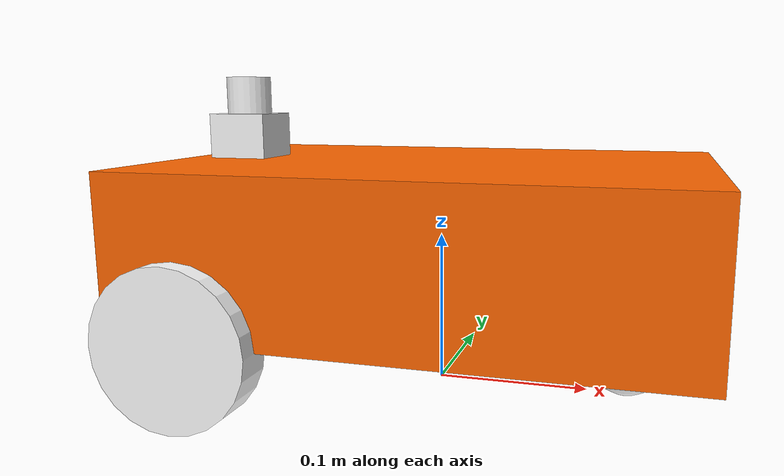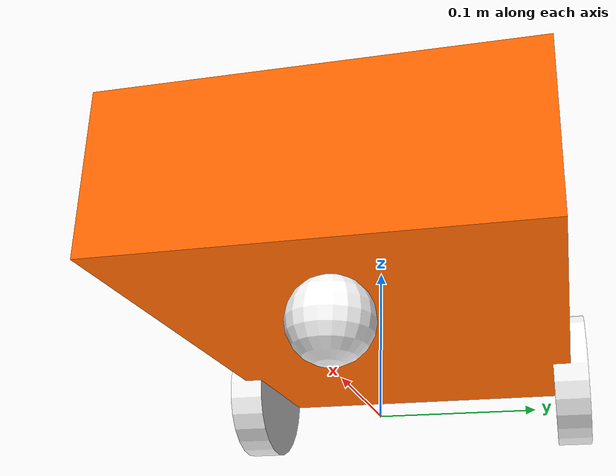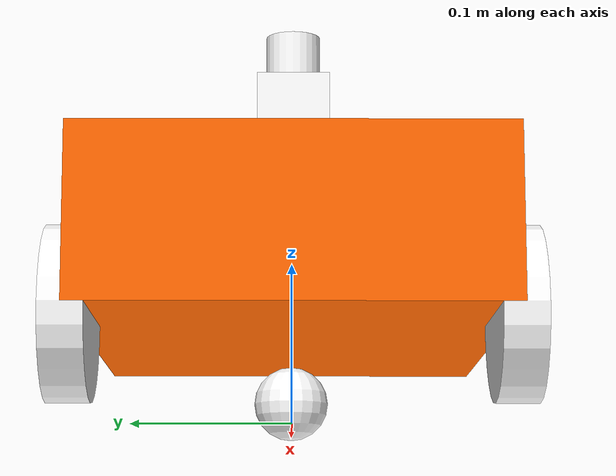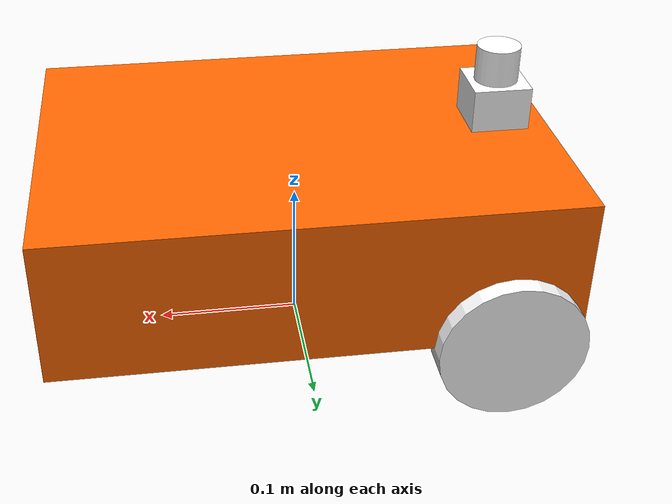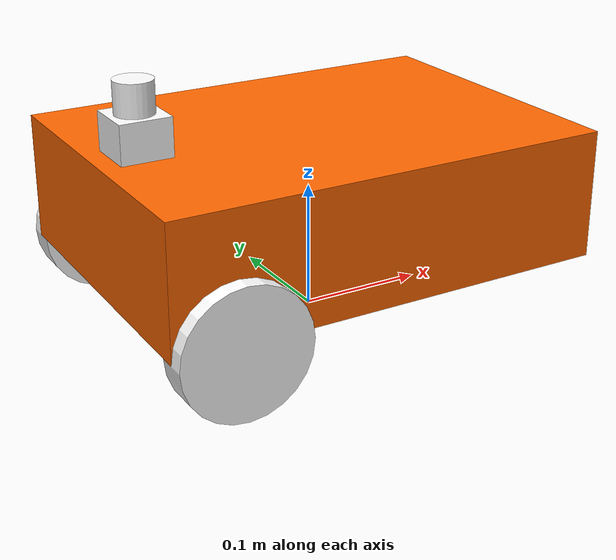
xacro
<?xml version="1.0"?>
<robot name="mbot" xmlns:xacro="http://www.ros.org/wiki/xacro">

    <xacro:include filename="$(find mbot_description)/urdf/mbot_base_gazebo.xacro" />
    <xacro:include filename="$(find mbot_description)/urdf/sensors/lidar_gazebo.xacro" />

    <mbot_base_gazebo/>

    <xacro:property name="lidar_offset_x" value="-0.14" />
    <xacro:property name="lidar_offset_y" value="0" />
    <xacro:property name="lidar_offset_z" value="0.09" />

    <!-- lidar -->
    <joint name="lidar_joint" type="fixed">
        <origin xyz="${lidar_offset_x} ${lidar_offset_y} ${lidar_offset_z}" rpy="0 0 0" />
        <parent link="base_link"/>
        <child link="laser_link"/>
    </joint>

    <rplidar />

</robot>

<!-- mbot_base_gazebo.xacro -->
<robot name="mbot" xmlns:xacro="http://www.ros.org/wiki/xacro">

 	<!-- PROPERTY LIST -->
	<xacro:property name="M_PI" value="3.1415926"/>
	<xacro:property name="base_mass"   value="0.002" />
	<xacro:property name="base_length" value="0.35"/>
    <xacro:property name="base_width" value="0.25"/>
    <xacro:property name="base_hight" value="0.1"/>

	<xacro:property name="box_mass"   value="0.005" />
	<xacro:property name="box_length" value="0.04"/>
    <xacro:property name="box_width" value="0.04"/>
    <xacro:property name="box_hight" value="0.03"/>

    <xacro:property name="caster_mass"    value="0.1" />
    <xacro:property name="caster_radius"  value="0.025"/> <!-- wheel_radius - ( base_length/2 - wheel_joint_z) -->
    <xacro:property name="caster_joint_x" value="0.18"/>

    <xacro:property name="wheel_mass"   value="0.1" />
    <xacro:property name="wheel_radius" value="0.05"/>
    <xacro:property name="wheel_length" value="0.025"/>

	<!-- Defining the colors used in this robot -->
    	<material name="yellow">
        	<color rgba="1 0.4 0 1"/>
    	</material>
    	<material name="black">
        	<color rgba="0 0 0 0.95"/>
    	</material>
	<material name="white">
                <color rgba="1 1 1 1"/>
        </material>

	<!-- Macro for inertia matrix -->
	<xacro:macro name="cylinder_inertial_matrix" params="m r h">
        	<inertial>
            		<mass value="${m}" />
            		<inertia ixx="${m*(3*r*r+h*h)/12}" ixy="0" ixz="0"
				 iyx="0" iyy="${m*(3*r*r+h*h)/12}" iyz="0"
                		 izx="0" izy="0" izz="${m*r*r/2}" />
        	</inertial>
    	</xacro:macro>

    <!-- Macro for inertia matrix -->
    <xacro:macro name="sphere_inertial_matrix" params="m r">
        <inertial>
            <mass value="${m}" />
            <inertia ixx="${2*m*r*r/5}" ixy="0" ixz="0"
                iyy="${2*m*r*r/5}" iyz="0"
                izz="${2*m*r*r/5}" />
        </inertial>
    </xacro:macro>

	<!-- Macro for inertia matrix -->
	<xacro:macro name="box_inertial_matrix" params="m l w h">
        	<inertial>
            		<mass value="${m}" />
            		<inertia ixx="${m*(w*w+h*h)/12}" ixy="0" ixz="0"
				 iyx="0" iyy="${m*(l*l+h*h)/12}" iyz="0"
                		 izx="0" izy="0" izz="${m*(l*l+w*w)/12}" />
        	</inertial>
    	</xacro:macro>

	<!-- Macro for robot wheel -->
	<xacro:macro name="wheel" params="prefix base reflectx reflecty">

	<joint name="${prefix}_wheel_joint" type="continuous">
		<origin xyz="${reflectx*(base_length/2-wheel_radius)} ${reflecty*(base_width/2)} ${-base_hight/2}" rpy="0 0 0"/>
        	<parent link="${base}"/>
        	<child link="${prefix}_wheel_link"/>
        	<axis xyz="0 1 0"/>
    	</joint>

	<link name="${prefix}_wheel_link">
        	<visual>
            		<origin xyz="0 0 0" rpy="${M_PI/2} 0 0" />
            		<geometry>
                		<cylinder radius="${wheel_radius}" length = "${wheel_length}"/>
            		</geometry>
            		<material name="white" />
        	</visual>
		<collision>
                	<origin xyz="0 0 0" rpy="${M_PI/2} 0 0" />
                	<geometry>
                	    <cylinder radius="${wheel_radius}" length = "${wheel_length}"/>
                	</geometry>
            	</collision>
		<cylinder_inertial_matrix  m="${wheel_mass}" r="${wheel_radius}" h="${wheel_length}" />
    	</link>

	<gazebo reference="${prefix}_wheel_link">
		<material>Gazebo/Gray</material>
        </gazebo>

	<!-- Transmission is important to link the joints and the controller -->
        <transmission name="${prefix}_wheel_joint_trans">
		<type>transmission_interface/SimpleTransmission</type>
	        <joint name="${prefix}_wheel_joint" >
			<hardwareInterface>hardware_interface/VelocityJointInterface</hardwareInterface>
		</joint>
            	<actuator name="${prefix}_wheel_joint_motor">
                	<hardwareInterface>hardware_interface/VelocityJointInterface</hardwareInterface>
                	<mechanicalReduction>1</mechanicalReduction>
            	</actuator>
        </transmission>

	</xacro:macro>

    <!-- Macro for robot caster -->
    <xacro:macro name="caster" params="prefix reflect">
        <joint name="${prefix}_caster_joint" type="continuous">
            <origin xyz="${reflect*(base_length/2-wheel_radius)} 0 ${-base_hight/2 - caster_radius}" rpy="0 0 0"/>
            <parent link="base_link"/>
            <child link="${prefix}_caster_link"/>
            <axis xyz="0 1 0"/>
        </joint>

        <link name="${prefix}_caster_link">
            <visual>
                <origin xyz="0 0 0" rpy="0 0 0"/>
                <geometry>
                    <sphere radius="${caster_radius}" />
                </geometry>
                <material name="white" />
            </visual>
            <collision>
                <origin xyz="0 0 0" rpy="0 0 0"/>
                <geometry>
                    <sphere radius="${caster_radius}" />
                </geometry>
            </collision>
            <sphere_inertial_matrix  m="${caster_mass}" r="${caster_radius}" />
        </link>

        <gazebo reference="${prefix}_caster_link">
            <material>Gazebo/White</material>
        </gazebo>
    </xacro:macro>

	<xacro:macro name="mbot_base_gazebo">
		<link name="base_footprint">
	            <visual>
	                <origin xyz="0 0 0" rpy="0 0 0" />
	                <geometry>
	                    <box size="0.001 0.001 0.001" />
	                </geometry>
	            </visual>
	        </link>

        	<gazebo reference="base_footprint">
            		<turnGravityOff>false</turnGravityOff>
        	</gazebo>

        	<joint name="base_footprint_joint" type="fixed">
            		<origin xyz="0 0 ${base_hight/2 + wheel_radius}" rpy="0 0 0" />
            		<parent link="base_footprint"/>
            		<child link="base_link" />
        	</joint>

		<link name="base_link">
			<visual>
 				<origin xyz=" 0 0 0" rpy="0 0 0" />
            			<geometry>
                			<box size="${base_length} ${base_width} ${base_hight}" />
            			</geometry>
            			<material name="yellow"/>
			</visual>
			<collision>
                		<origin xyz=" 0 0 0" rpy="0 0 0" />
                		<geometry>
                    			<box size="${base_length} ${base_width} ${base_hight}" />
               			</geometry>
            		</collision>
			<box_inertial_matrix  m="${base_mass}" l="${base_length}" w="${base_width}" h="${base_hight}" />
		</link>

				<joint name="box_link" type="fixed">
          		<origin xyz="-0.14 0 ${base_hight/2 + box_hight/2}" rpy="0 0 0" />
            		<parent link="base_link"/>
            		<child link="box_link" />
        	</joint>

		<link name="box_link">
			<visual>
 				<origin xyz=" 0 0 0" rpy="0 0 0" />
            			<geometry>
                			<box size="${box_length} ${box_width} ${box_hight}" />
            			</geometry>
            			<material name="white"/>
			</visual>
			<collision>
                		<origin xyz=" 0 0 0" rpy="0 0 0" />
                		<geometry>
                    			<box size="${box_length} ${box_width} ${box_hight}" />
               			</geometry>
            		</collision>
			<box_inertial_matrix  m="${box_mass}" l="${box_length}" w="${box_width}" h="${box_hight}" />
		</link>

		<gazebo reference="box_link">
			<material>Gazebo/White</material>
        	</gazebo>

		<gazebo reference="base_link">
			<material>Gazebo/Blue</material>
        	</gazebo>

		<wheel prefix="back_left" base="base_link" reflectx="-1" reflecty="1"/>
        	<wheel prefix="back_right" base="base_link" reflectx="-1" reflecty="-1"/>

		<caster prefix="front" reflect="1"/>
        <!-- controller -->
        <gazebo>
            <plugin name="differential_drive_controller"
                    filename="libgazebo_ros_diff_drive.so">
                <rosDebugLevel>Debug</rosDebugLevel>
                <publishWheelTF>true</publishWheelTF>
                <robotNamespace>/</robotNamespace>
                <publishTf>1</publishTf>
                <publishWheelJointState>true</publishWheelJointState>
                <alwaysOn>true</alwaysOn>
                <updateRate>100.0</updateRate>
                <legacyMode>true</legacyMode>
                <leftJoint>back_left_wheel_joint</leftJoint>
                <rightJoint>back_right_wheel_joint</rightJoint>
                <wheelSeparation>${wheel_radius*2}</wheelSeparation>
                <wheelDiameter>${2*wheel_radius}</wheelDiameter>
                <broadcastTF>1</broadcastTF>
                <wheelTorque>30</wheelTorque>
                <wheelAcceleration>1.8</wheelAcceleration>
                <commandTopic>cmd_vel</commandTopic>
                <odometryFrame>odom</odometryFrame>
                <odometryTopic>odom</odometryTopic>
                <robotBaseFrame>base_footprint</robotBaseFrame>
            </plugin>
        </gazebo>

	</xacro:macro>
</robot>

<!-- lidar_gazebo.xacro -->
<robot xmlns:xacro="http://www.ros.org/wiki/xacro" name="laser">

    <xacro:macro name="rplidar" params="prefix:=laser">
        <!-- Create laser reference frame -->
        <link name="${prefix}_link">
            <inertial>
                <mass value="0.00001" />
                <origin xyz="0 0 0" />
                <inertia ixx="0.01" ixy="0.0" ixz="0.0"
                         iyy="0.01" iyz="0.0"
                         izz="0.01" />
            </inertial>

            <visual>
                <origin xyz=" 0 0 0 " rpy="0 0 0" />
                <geometry>
                    <cylinder length="0.03" radius="0.015"/>
                </geometry>
                <material name="white"/>
            </visual>

            <collision>
                <origin xyz="0.0 0.0 0.0" rpy="0 0 0" />
                <geometry>
                    <cylinder length="0.03" radius="0.015"/>
                </geometry>
            </collision>
        </link>
        <gazebo reference="${prefix}_link">
            <material>Gazebo/White</material>
        </gazebo>

        <gazebo reference="${prefix}_link">
            <sensor type="ray" name="rplidar">
                <pose>0 0 0 0 0 0</pose>
                <visualize>true</visualize>
                <update_rate>20</update_rate>
                <ray>
                    <scan>
                      <horizontal>
                        <samples>360</samples>
                        <resolution>1</resolution>
                        <min_angle>-3.141593</min_angle>
                        <max_angle>3.141593</max_angle>
                      </horizontal>
                    </scan>
                    <range>
                      <min>0.25</min>
                      <max>10.0</max>
                      <resolution>0.01</resolution>
                    </range>
                    <noise>
                      <type>gaussian</type>
                      <mean>0.0</mean>
                      <stddev>0.01</stddev>
                    </noise>
                </ray>
                <plugin name="gazebo_rplidar" filename="libgazebo_ros_laser.so">
                    <topicName>/scan</topicName>
                    <frameName>laser_link</frameName>
                </plugin>
            </sensor>
        </gazebo>

    </xacro:macro>
</robot>
